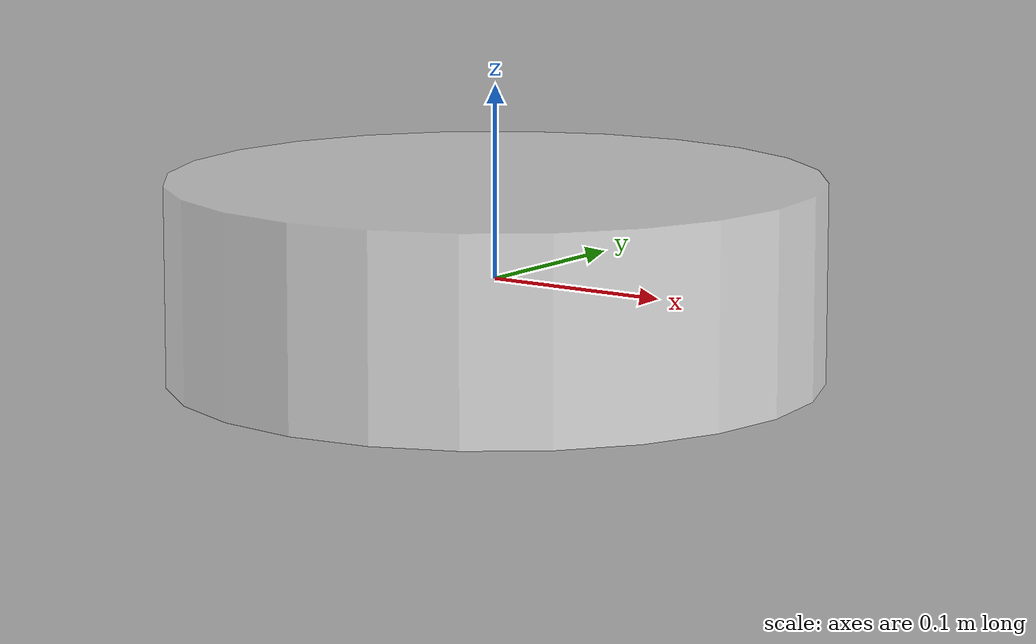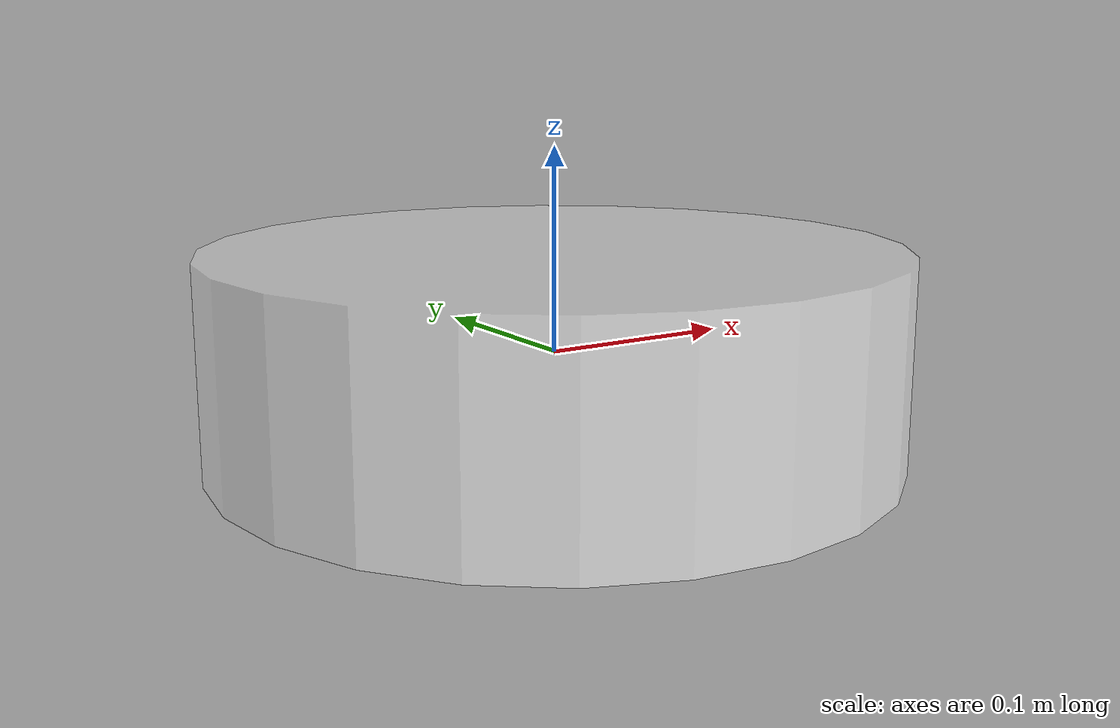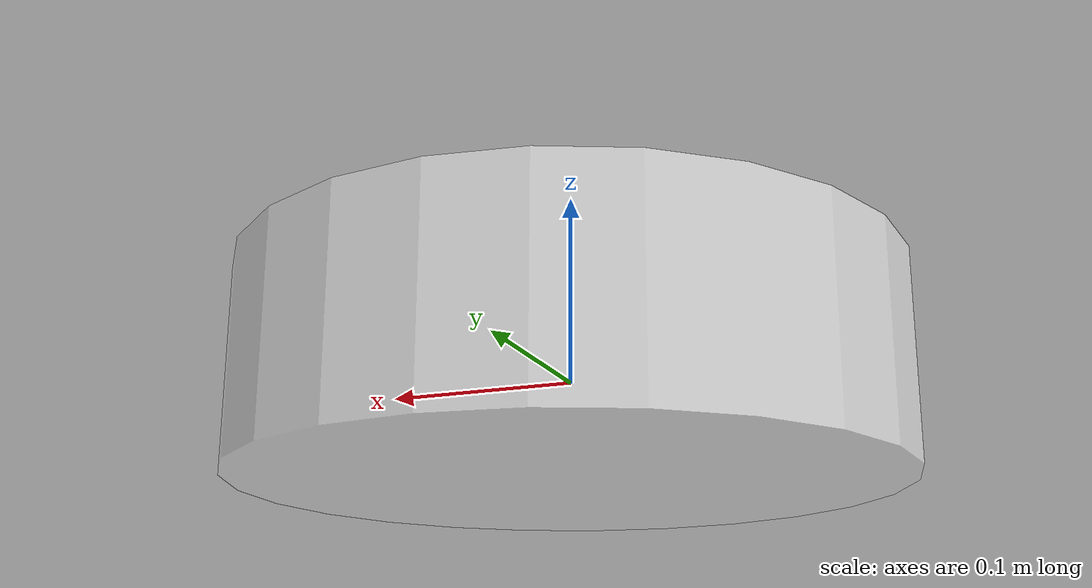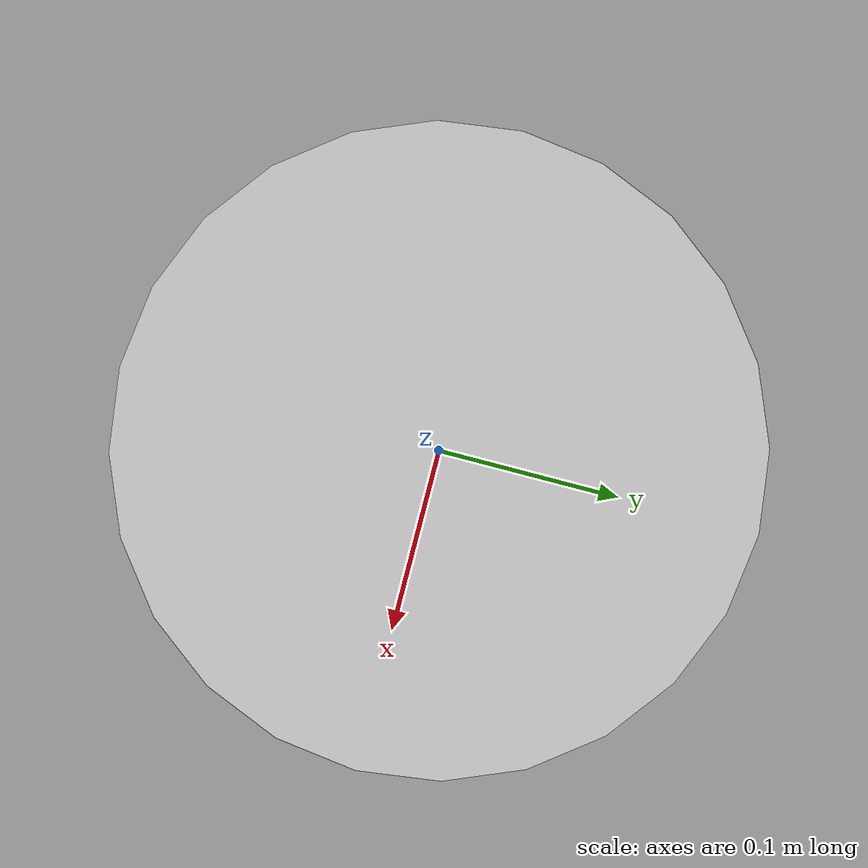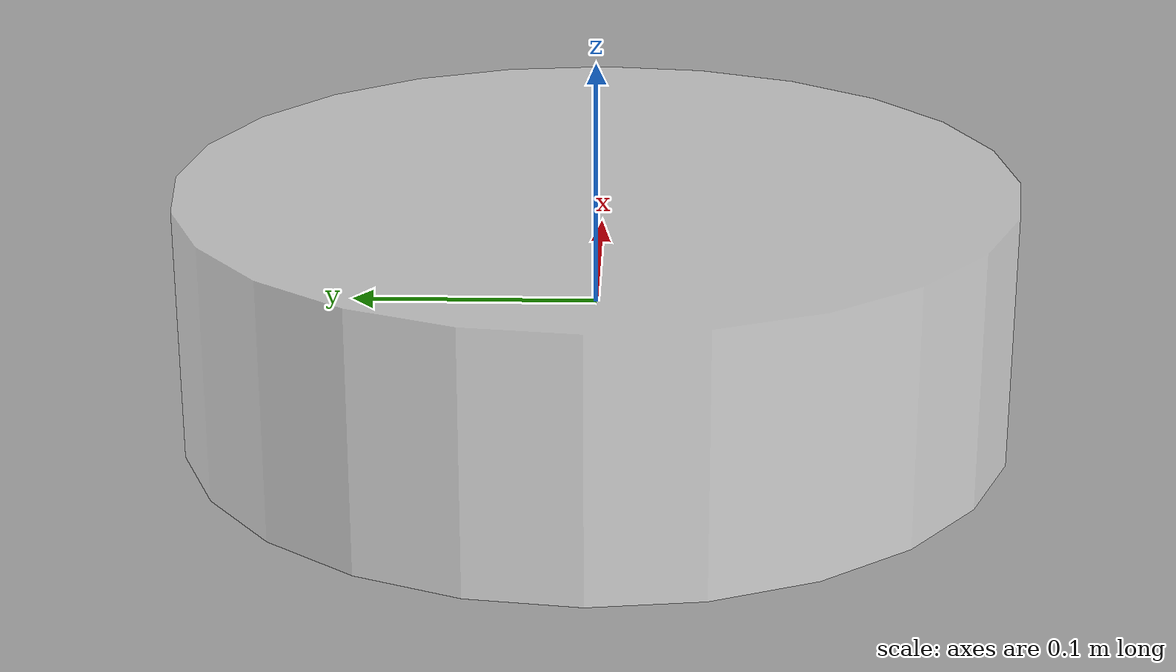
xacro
<?xml version="1.0"?>
<robot xmlns:xacro="http://www.ros.org/wiki/xacro" name="first_robot">

  <!-- ========== MATERIAL DEFINITIONS ========== -->
  <xacro:property name="white_rgba" value="1.0 1.0 1.0 0.5"/>
  <xacro:property name="black_rgba" value="0.0 0.0 0.0 0.5"/>

  <material name="white">
    <color rgba="${white_rgba}"/>
  </material>

  <material name="black">
    <color rgba="${black_rgba}"/>
  </material>

  <!-- ========== GEOMETRY PARAMETERS ========== -->
  <xacro:property name="base_radius" value="0.17"/>
  <xacro:property name="base_length" value="0.104"/>
  <xacro:property name="imu_size" value="0.02"/>
  <xacro:property name="imu_z_offset" value="0.03"/>

  <!-- ========== MACRO DEFINITIONS ========== -->

  <!-- Base Link Macro -->
  <xacro:macro name="base_link" params="name:=base_link radius length">
    <link name="${name}">
      <visual>
        <origin xyz="0.0 0.0 0.0" rpy="0.0 0.0 0.0"/>
        <geometry>
          <cylinder radius="${radius}" length="${length}"/>
        </geometry>
        <material name="white"/>
      </visual>
    </link>
  </xacro:macro>

  <!-- IMU Link Macro -->
  <xacro:macro name="imu_link" params="name:=imu_link size">
    <link name="${name}">
      <visual>
        <origin xyz="0.0 0.0 0.0" rpy="0.0 0.0 0.0"/>
        <geometry>
          <box size="${size} ${size} ${size}"/>
        </geometry>
        <material name="black"/>
      </visual>
    </link>
  </xacro:macro>

  <!-- IMU Joint Macro -->
  <xacro:macro name="imu_joint" params="name:=imu_joint parent child xyz rpy:='0.0 0.0 0.0'">
    <joint name="${name}" type="fixed">
      <parent link="${parent}"/>
      <child link="${child}"/>
      <origin xyz="${xyz}" rpy="${rpy}"/>
    </joint>
  </xacro:macro>

  <!-- ========== ROBOT INSTANTIATION ========== -->

  <!-- Create Base Link -->
  <xacro:base_link radius="${base_radius}" length="${base_length}"/>

  <!-- Create IMU Link -->
  <xacro:imu_link size="${imu_size}"/>
  <xacro:imu_link name="imu2" size="${imu_size}"/>

  <!-- Attach IMUs -->
  <xacro:imu_joint parent="base_link" child="imu_link" xyz="0.0 0.0 ${imu_z_offset}"/>
  <xacro:imu_joint name = "imujonit2" parent="base_link" child="imu2" xyz="0.0 0.0 -0.03"/>

</robot>
